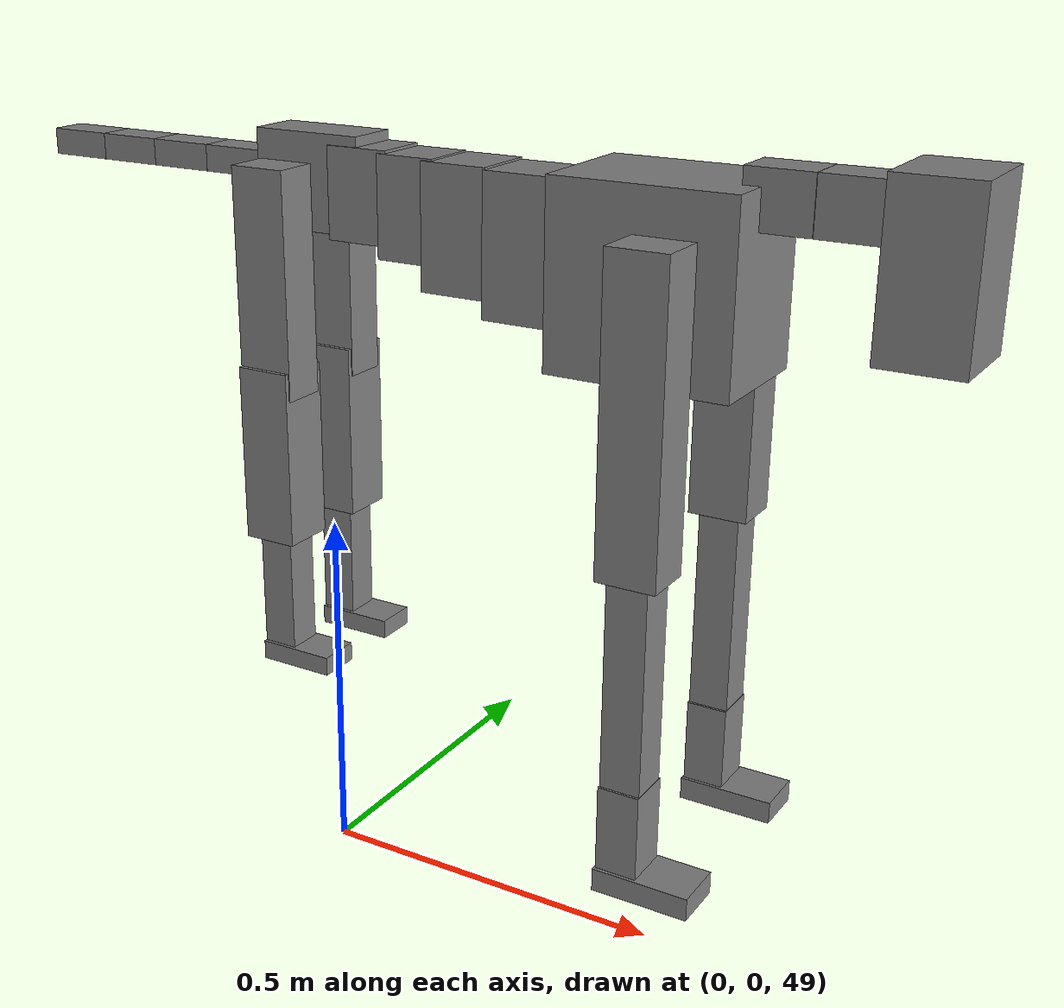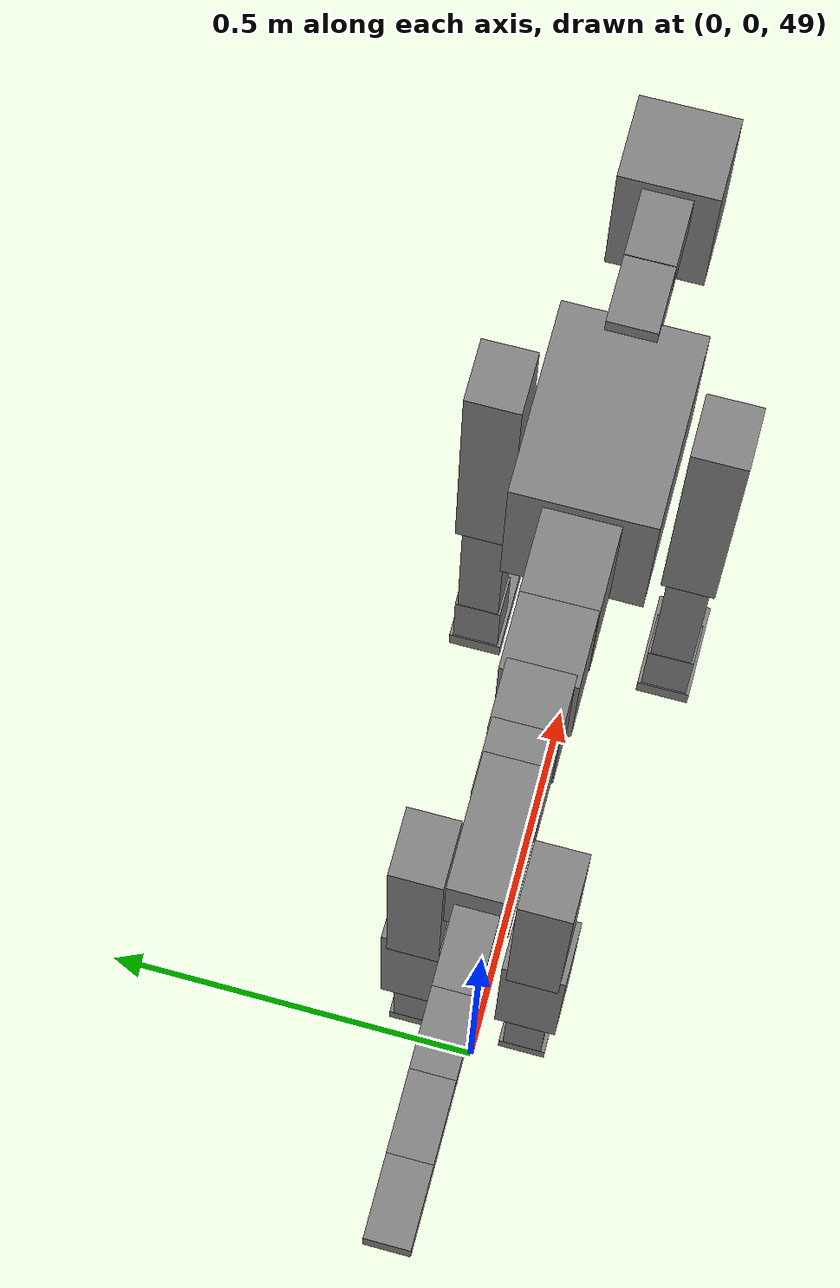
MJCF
<mujoco model="dog">

    <default>
        <joint armature="0.02" stiffness="1" damping="0.2" limited="true"/>
        <geom condim="3" friction="1 0.05 0.05" margin="0.01"/>
        <motor ctrllimited="true" ctrlrange="-1.0 1.0" forcelimited="true" gear="50"/>
    </default>

    <compiler inertiafromgeom="true" angle="radian"/>

    <option timestep="0.016" iterations="50" tolerance="1e-10" solver="Newton" jacobian="dense" cone="pyramidal"/>

    <size nconmax="20000" njmax="60000" nstack="5000000"/>
    <visual>
        <map force="0.1" zfar="30"/>
        <rgba haze="0.15 0.25 0.35 1"/>
        <quality shadowsize="2048"/>
        <global offwidth="800" offheight="800"/>
    </visual>

    <asset>
        <texture type="skybox" builtin="gradient" rgb1="0.3 0.5 0.7" rgb2="0 0 0" width="512" height="512"/>
        <texture name="texplane" type="2d" builtin="checker" rgb1=".2 .3 .4" rgb2=".1 0.15 0.2" width="512" height="512"
                 mark="cross" markrgb=".8 .8 .8"/>
        <texture name="texgeom" type="cube" builtin="flat" mark="cross" width="127" height="1278" rgb1="0.8 0.6 0.4"
                 rgb2="0.8 0.6 0.4" markrgb="1 1 1" random="0.01"/>

        <material name="matplane" reflectance="0.3" texture="texplane" texrepeat="1 1" texuniform="true"/>
        <material name="matgeom" texture="texgeom" texuniform="true" rgba="0.8 0.6 .4 1"/>
    </asset>

    <worldbody>
        <geom name="floor" pos="0 0 0" size="0 0 .25" type="plane" material="matplane" condim="3"/>

        <light directional="false" diffuse=".2 .2 .2" specular="0 0 0" pos="0 0 5" dir="0 0 -1" castshadow="false"/>
        <light mode="targetbodycom" target="torso" directional="false" diffuse=".8 .8 .8" specular="0.3 0.3 0.3"
               pos="0 0 4.0" dir="0 0 -1"/>

        <body name="root" pos="0 0 50">
            <freejoint name="root_1"/>
            <geom type="box" pos="0 0 -0.02" size="0.0774  0.0358  0.063" density="2030"/>

            <body name="spine1" pos="0.054 0 0">
                <joint name="spine1_y" axis="0 1 0" range="0 0.7" limited="true"/>
                <geom type="box" pos="0.02375 0 -0.03" size="0.04375  0.0375  0.05985" density="2030"/>

                <body name="spine2" pos="0.0612 0 0">
                    <joint name="spine2_y" axis="0 1 0" range="-0.15 0.15" limited="true"/>
                    <geom type="box" pos="0.03555  0  -0.04" size="0.04055  0.039  0.06615" density="2030"/>

                    <body name="spine3" pos="0.0730 0 0">
                        <joint name="spine3_y" axis="0 1 0" range="-0.15 0.15" limited="true"/>
                        <geom type="box" pos="0.03555  0  -0.057" size="0.04555  0.0445  0.081" density="2030"/>

                        <body name="spine4" pos="0.0780 0 0">
                            <joint name="spine4_y" axis="0 1 0" range="-0.15 0.15" limited="true"/>
                            <geom type="box" pos="0.05265  0  -0.07" size="0.05265  0.045  0.09135" density="2030"/>

                            <body name="torso" pos="0.1082 0 0">
                                <joint name="torso_y" axis="0 1 0" range="-0.15 0.15" limited="true"/>
                                <geom type="box" pos="0.11925  0  -0.085" size="0.11925  0.085  0.11745"
                                      density="2030"/>

                                <body name="neck1" pos="0.2160  0   0.0180">
                                    <joint name="neck1_y" axis="0 1 0" range="-1.2  -1" limited="true"/>
                                    <geom type="box" pos="0.0423  0  0" size="0.0423  0.03  0.036" density="2325"/>

                                    <body name="neck2" pos="0.0853  0  0">
                                        <joint name="neck2_y" axis="0 1 0" range="0.1  0" limited="true"/>
                                        <geom type="box" pos="0.0423  0  0" size="0.0423  0.03  0.036" density="2325"/>

                                        <body name="head" pos="0.0853  0  0">
                                            <joint name="head_y" axis="0 1 0" range="-0.3  -0.2" limited="true"/>
                                            <geom type="box" pos="0.0531  0  -0.055" size="0.0531  0.06  0.1044"
                                                  density="4030"/>

                                        </body>
                                    </body>
                                </body>

                                <body name="front_shoulder" pos="0.156  0   -0.0480">
                                    <joint name="front_shoulder_y" axis="0 1 0" range="-1 1.5" limited="true"/>
                                    <geom type="box" pos="0 0.13 -0.1701" size="0.0396  0.0339  0.1967" density="1158"/>
                                    <geom type="box" pos="0 -0.13 -0.1701" size="0.0396  0.0339  0.1967"
                                          density="1158"/>

                                    <body name="front_elbow" pos="0  0  -0.3402">
                                        <joint name="front_elbow_y" axis="0 1 0" range="-2 0" limited="true"/>
                                        <geom type="box" pos="0 0.13 -0.1557" size="0.0267  0.0273  0.1557"
                                              density="1081"/>
                                        <geom type="box" pos="0 -0.13 -0.1557" size="0.0267  0.0273  0.1557"
                                              density="1081"/>

                                        <body name="front_wrist" pos="0  0  -0.3113">
                                            <joint name="front_wrist_y" axis="0 1 0" range="-0.2 0" limited="true"/>
                                            <geom type="box" pos="0 0.13 -0.0580" size="0.0274  0.0305  0.0711"
                                                  density="1664"/>
                                            <geom type="box" pos="0 -0.13 -0.0580" size="0.0274  0.0305  0.0711"
                                                  density="1664"/>

                                            <body name="front_finger_end" pos="0  0  -0.1160">
                                                <joint name="front_finger_y" axis="0 1 0" range="-0.4 1"
                                                       limited="true"/>
                                                <geom type="box" pos="0.0351  0.13  -0.0002"
                                                      size="0.0643  0.0351  0.0152" density="1515"/>
                                                <geom type="box" pos="0.0351  -0.13  -0.0002"
                                                      size="0.0643  0.0351  0.0152" density="1515"/>

                                            </body>

                                        </body>
                                    </body>
                                </body>

                            </body>
                        </body>
                    </body>
                </body>
            </body>

            <body name="back_hip" pos="-0.03 0 -0.018">
                <joint name="back_hip_y" axis="0 1 0" range="-1.5 0.3" limited="true"/>
                <geom type="box" pos="0 0.07 -0.1273" size="0.0388  0.0305  0.1501" density="1154"/>
                <geom type="box" pos="0 -0.07 -0.1273" size="0.0388  0.0305  0.1501" density="1154"/>

                <body name="back_knee" pos="0  0  -0.2545">
                    <joint name="back_knee_y" axis="0 1 0" range="0 2.8" limited="true"/>
                    <geom type="box" pos="0 0.07 -0.1038" size="0.0375  0.0370  0.1193" density="1227"/>
                    <geom type="box" pos="0 -0.07 -0.1038" size="0.0375  0.0370  0.1193" density="1227"/>

                    <body name="back_ankle" pos="0  0  -0.2076">
                        <joint name="back_ankle_y" axis="0 1 0" range="-2.2 0" limited="true"/>
                        <geom type="box" pos="0 0.07 -0.0946" size="0.0241  0.0241  0.1059" density="1284"/>
                        <geom type="box" pos="0 -0.07 -0.0946" size="0.0241  0.0241  0.1059" density="1284"/>

                        <body name="back_toe_end" pos="0  0  -0.1892">
                            <joint name="back_toe_y" axis="0 1 0" range="-0.4 1" limited="true"/>
                            <geom type="box" pos="0.0291  0.07  0.0020" size="0.0533  0.0291  0.0130" density="1515"/>
                            <geom type="box" pos="0.0291  -0.07  0.0020" size="0.0533  0.0291  0.0130" density="1515"/>

                        </body>
                    </body>
                </body>
            </body>

            <body name="tail1" pos="-0.074 0 -0.006">
                <joint name="tail1_y" axis="0 1 0" range="-0.2 0.2" limited="true"/>
                <geom type="box" pos="-0.0536  0  0" size="0.045  0.025  0.0175" density="1587"/>

                <body name="tail2" pos="-0.09 0 0">
                    <joint name="tail2_y" axis="0 1 0" range="-0.2 0.2" limited="true"/>
                    <geom type="box" pos="-0.0536  0  0" size="0.045  0.025  0.0175" density="1587"/>

                    <body name="tail3" pos="-0.09 0 0">
                        <joint name="tail3_y" axis="0 1 0" range="-0.2 0.2" limited="true"/>
                        <geom type="box" pos="-0.0536  0  0" size="0.045  0.025  0.0175" density="1587"/>

                        <body name="tail4" pos="-0.09 0 0">
                            <joint name="tail4_y" axis="0 1 0" range="-0.2 0.2" limited="true"/>
                            <geom type="box" pos="-0.0536  0  0" size="0.045  0.025  0.0175" density="1587"/>

                        </body>
                    </body>
                </body>
            </body>
        </body>
    </worldbody>

    <actuator>
        <motor joint="spine1_y" forcerange="-150 150     "/>
        <motor joint="spine2_y" forcerange="-150 150     "/>
        <motor joint="spine3_y" forcerange="-150 150     "/>
        <motor joint="spine4_y" forcerange="-150 150     "/>
        <motor joint="torso_y" forcerange="-150 150     "/>
        <motor joint="neck1_y" forcerange="-100 100       "/>
        <motor joint="neck2_y" forcerange="-100 100       "/>
        <motor joint="head_y" forcerange="-150 150       "/>
        <motor joint="front_shoulder_y" forcerange="-158.47 167.37"/>
        <motor joint="front_elbow_y" forcerange="-126.28 172.53"/>
        <motor joint="front_wrist_y" forcerange="-123.10 120.85"/>
        <motor joint="front_finger_y" forcerange="-97.54 49.48"/>
        <motor joint="back_hip_y" forcerange="-312.23 294.00"/>
        <motor joint="back_knee_y" forcerange="-341.10 396.73"/>
        <motor joint="back_angle_y" forcerange="-62.27 223.17"/>
        <motor joint="back_toe_y" forcerange="-115.67 36.99"/>
        <motor joint="tail1_y" forcerange="-50 50     "/>
        <motor joint="tail2_y" forcerange="-50 50     "/>
        <motor joint="tail3_y" forcerange="-50 50     "/>
        <motor joint="tail4_y" forcerange="-50 50     "/>
    </actuator>
</mujoco>
